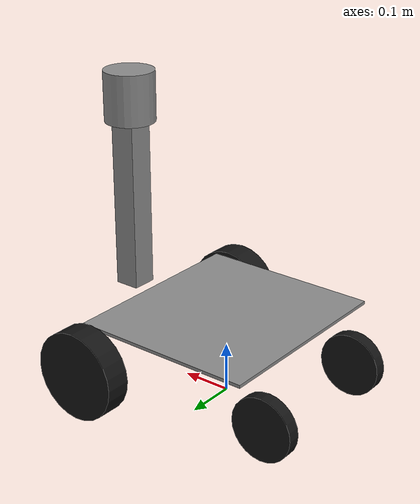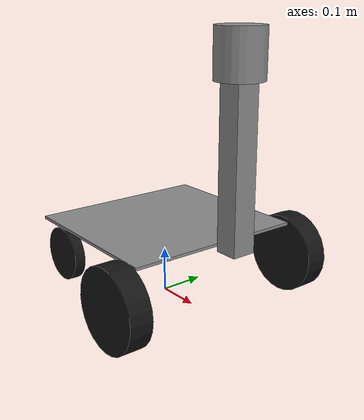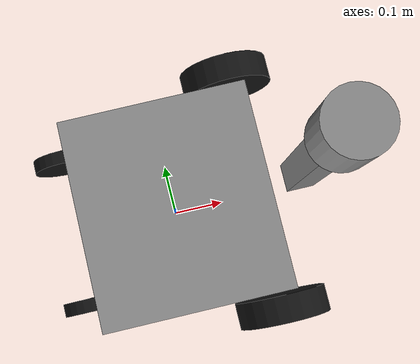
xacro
<?xml version="1.0"?>
<robot xmlns:xacro="http://www.ros.org/wiki/xacro" name="obot">

  <xacro:arg name="use_sim" default="false"/>
  <xacro:property name="use_sim" value="$(arg use_sim)"/>

  <xacro:property name="inch" value="0.0254"/>

  <!-- Base plate -->
  <xacro:property name="base_length" value="${14.5 * inch}"/>
  <xacro:property name="base_width" value="${16.0 * inch}"/>
  <xacro:property name="base_thickness" value="${0.25 * inch}"/>

  <!-- Drive wheel geometry -->
  <xacro:property name="drive_wheel_radius" value="${3.5 * inch}"/>
  <xacro:property name="drive_wheel_width" value="${2.0 * inch}"/>

  <xacro:property name="drive_axle_x" value="${6.25 * inch}"/>
  <xacro:property name="drive_wheel_y" value="${9.25 * inch}"/>
  <xacro:property name="drive_axle_z" value="${-3.125 * inch}"/>

  <!--
    Drive wheel radius is 3.5 in, so axle is 3.5 in above floor.
    base_link is therefore 3.5 - (-3.125) = 6.625 in above floor.
  -->
  <xacro:property name="base_link_height" value="${6.625 * inch}"/>

  <!-- Rear caster geometry -->
  <xacro:property name="caster_wheel_radius" value="${2.5 * inch}"/>
  <xacro:property name="caster_wheel_width" value="${1.0 * inch}"/>
  <xacro:property name="caster_trail" value="${2.0 * inch}"/>

  <xacro:property name="caster_pivot_x" value="${-5.75 * inch}"/>
  <xacro:property name="caster_pivot_y" value="${5.75 * inch}"/>
  <xacro:property name="caster_pivot_z" value="${-0.125 * inch}"/>
  <xacro:property name="caster_axle_z_from_base" value="${-4.125 * inch}"/>
  <xacro:property name="caster_axle_z_from_pivot" value="${-4.0 * inch}"/>

  <xacro:macro name="box_inertial" params="mass x y z">
    <inertial>
      <mass value="${mass}"/>
      <origin xyz="0 0 0" rpy="0 0 0"/>
      <inertia
        ixx="${mass * (y * y + z * z) / 12.0}"
        ixy="0"
        ixz="0"
        iyy="${mass * (x * x + z * z) / 12.0}"
        iyz="0"
        izz="${mass * (x * x + y * y) / 12.0}"/>
    </inertial>
  </xacro:macro>

  <xacro:macro name="cylinder_inertial" params="mass radius length">
    <inertial>
      <mass value="${mass}"/>
      <origin xyz="0 0 0" rpy="0 0 0"/>
      <inertia
        ixx="${mass * (3.0 * radius * radius + length * length) / 12.0}"
        ixy="0"
        ixz="0"
        iyy="${mass * (3.0 * radius * radius + length * length) / 12.0}"
        iyz="0"
        izz="${mass * radius * radius / 2.0}"/>
    </inertial>
  </xacro:macro>

  <material name="base_gray">
    <color rgba="0.55 0.55 0.55 1.0"/>
  </material>

  <material name="wheel_black">
    <color rgba="0.08 0.08 0.08 1.0"/>
  </material>

  <!-- Base reference frames    -->

  <link name="base_footprint"/>

  <joint name="base_footprint_to_base_link" type="fixed">
    <parent link="base_footprint"/>
    <child link="base_link"/>
    <origin xyz="0 0 ${base_link_height}" rpy="0 0 0"/>
  </joint>

  <link name="base_link">
    <xacro:box_inertial mass="10.0" x="${base_length}" y="${base_width}" z="${base_thickness}"/>
    <visual>
      <origin xyz="0 0 0" rpy="0 0 0"/>
      <geometry>
        <box size="${base_length} ${base_width} ${base_thickness}"/>
      </geometry>
      <material name="base_gray"/>
    </visual>
    <collision>
      <origin xyz="0 0 0" rpy="0 0 0"/>
      <geometry>
        <box size="${base_length} ${base_width} ${base_thickness}"/>
      </geometry>
    </collision>
  </link>

  <!-- Drive wheels             -->

  <xacro:macro name="drive_wheel" params="side y">
    <link name="${side}_drive_wheel_link">
      <xacro:cylinder_inertial mass="0.8" radius="${drive_wheel_radius}" length="${drive_wheel_width}"/>
      <visual>
        <!-- Cylinder axis is rotated from Z onto Y. -->
        <origin xyz="0 0 0" rpy="${pi/2.0} 0 0"/>
        <geometry>
          <cylinder radius="${drive_wheel_radius}" length="${drive_wheel_width}"/>
        </geometry>
        <material name="wheel_black"/>
      </visual>
      <collision>
        <origin xyz="0 0 0" rpy="${pi/2.0} 0 0"/>
        <geometry>
          <cylinder radius="${drive_wheel_radius}" length="${drive_wheel_width}"/>
        </geometry>
      </collision>
    </link>

    <joint name="${side}_drive_wheel_joint" type="continuous">
      <parent link="base_link"/>
      <child link="${side}_drive_wheel_link"/>
      <origin xyz="${drive_axle_x} ${y} ${drive_axle_z}" rpy="0 0 0"/>
      <axis xyz="0 1 0"/>
    </joint>
  </xacro:macro>

  <xacro:drive_wheel side="left"  y="${ drive_wheel_y}"/>
  <xacro:drive_wheel side="right" y="${-drive_wheel_y}"/>

  <!-- Rear swivel casters      -->

  <xacro:macro name="caster" params="side y">
    <link name="${side}_caster_swivel_link">
      <xacro:cylinder_inertial mass="0.2" radius="${0.35 * inch}" length="${0.5 * inch}"/>
      <!-- Simple placeholder visual for the swivel/fork attachment. -->
      <visual>
        <origin xyz="0 0 -${0.25 * inch}" rpy="0 0 0"/>
        <geometry>
          <cylinder radius="${0.35 * inch}" length="${0.5 * inch}"/>
        </geometry>
        <material name="base_gray"/>
      </visual>
    </link>

    <joint name="${side}_caster_swivel_joint" type="continuous">
      <parent link="base_link"/>
      <child link="${side}_caster_swivel_link"/>
      <origin xyz="${caster_pivot_x} ${y} ${caster_pivot_z}" rpy="0 0 0"/>
      <axis xyz="0 0 1"/>
    </joint>

    <link name="${side}_caster_wheel_link">
      <xacro:cylinder_inertial mass="0.4" radius="${caster_wheel_radius}" length="${caster_wheel_width}"/>
      <visual>
        <origin xyz="0 0 0" rpy="${pi/2.0} 0 0"/>
        <geometry>
          <cylinder radius="${caster_wheel_radius}" length="${caster_wheel_width}"/>
        </geometry>
        <material name="wheel_black"/>
      </visual>
      <collision>
        <origin xyz="0 0 0" rpy="${pi/2.0} 0 0"/>
        <geometry>
          <cylinder radius="${caster_wheel_radius}" length="${caster_wheel_width}"/>
        </geometry>
      </collision>
    </link>

    <joint name="${side}_caster_wheel_joint" type="continuous">
      <parent link="${side}_caster_swivel_link"/>
      <child link="${side}_caster_wheel_link"/>
      <!--
        At zero swivel angle, the caster wheel trails 2 in behind the pivot.
      -->
      <origin xyz="${-caster_trail} 0 ${caster_axle_z_from_pivot}" rpy="0 0 0"/>
      <axis xyz="0 1 0"/>
    </joint>
  </xacro:macro>

  <!-- SLAMTEC A2M12 LiDAR      -->

  <xacro:property name="lidar_x" value="${9.25 * inch}"/>
  <xacro:property name="lidar_z" value="${13.375 * inch}"/>
  <xacro:property name="lidar_mount_width" value="${2.0 * inch}"/>
  <xacro:property name="lidar_mount_depth" value="${2.0 * inch}"/>

  <link name="laser">
    <visual>
      <origin xyz="0 0 ${-lidar_z / 2.0}" rpy="0 0 0"/>
      <geometry>
        <box size="${lidar_mount_width} ${lidar_mount_depth} ${lidar_z}"/>
      </geometry>
      <material name="base_gray"/>
    </visual>
    <collision>
      <origin xyz="0 0 ${-lidar_z / 2.0}" rpy="0 0 0"/>
      <geometry>
        <box size="${lidar_mount_width} ${lidar_mount_depth} ${lidar_z}"/>
      </geometry>
    </collision>
    <visual>
      <origin xyz="0 0 0.05" rpy="0 0 0"/>
      <geometry>
        <cylinder radius="0.05" length="0.10"/>
      </geometry>
      <material name="base_gray"/>
    </visual>
  </link>

  <joint name="base_link_to_laser" type="fixed">
    <parent link="base_link"/>
    <child link="laser"/>
    <origin xyz="${lidar_x} 0 ${lidar_z}" rpy="0 0 ${pi/2.0}"/>
  </joint>

  <xacro:caster side="left"  y="${ caster_pivot_y}"/>
  <xacro:caster side="right" y="${-caster_pivot_y}"/>

  <xacro:unless value="${use_sim}">
    <ros2_control name="OBotSystem" type="system">
      <hardware>
        <plugin>odrive_ros2_control_plugin/ODriveHardwareInterface</plugin>
        <param name="can">can0</param>
      </hardware>

      <joint name="left_drive_wheel_joint">
        <param name="node_id">61</param>

        <command_interface name="velocity"/>
        <command_interface name="position"/>
        <command_interface name="effort"/>

        <state_interface name="position"/>
        <state_interface name="velocity"/>
        <state_interface name="effort"/>
      </joint>

      <joint name="right_drive_wheel_joint">
        <param name="node_id">62</param>

        <command_interface name="velocity"/>
        <command_interface name="position"/>
        <command_interface name="effort"/>

        <state_interface name="position"/>
        <state_interface name="velocity"/>
        <state_interface name="effort"/>
      </joint>
    </ros2_control>
  </xacro:unless>

  <xacro:if value="${use_sim}">
    <gazebo>
      <plugin filename="gz-sim-diff-drive-system" name="gz::sim::systems::DiffDrive">
        <left_joint>left_drive_wheel_joint</left_joint>
        <right_joint>right_drive_wheel_joint</right_joint>
        <wheel_separation>0.4699</wheel_separation>
        <wheel_radius>0.0889</wheel_radius>
        <topic>/model/obot/cmd_vel</topic>
        <odom_topic>/model/obot/odometry</odom_topic>
        <tf_topic>/model/obot/tf</tf_topic>
        <frame_id>odom</frame_id>
        <child_frame_id>base_footprint</child_frame_id>
        <odom_publish_frequency>50</odom_publish_frequency>
      </plugin>
    </gazebo>

    <gazebo reference="laser">
      <sensor name="laser_sensor" type="gpu_lidar">
        <always_on>true</always_on>
        <visualize>true</visualize>
        <update_rate>10</update_rate>
        <topic>/scan</topic>
        <ray>
          <scan>
            <horizontal>
              <samples>720</samples>
              <resolution>1</resolution>
              <min_angle>-3.14159265</min_angle>
              <max_angle>3.14159265</max_angle>
            </horizontal>
          </scan>
          <range>
            <min>0.15</min>
            <max>12.0</max>
            <resolution>0.01</resolution>
          </range>
        </ray>
      </sensor>
    </gazebo>
  </xacro:if>

</robot>
